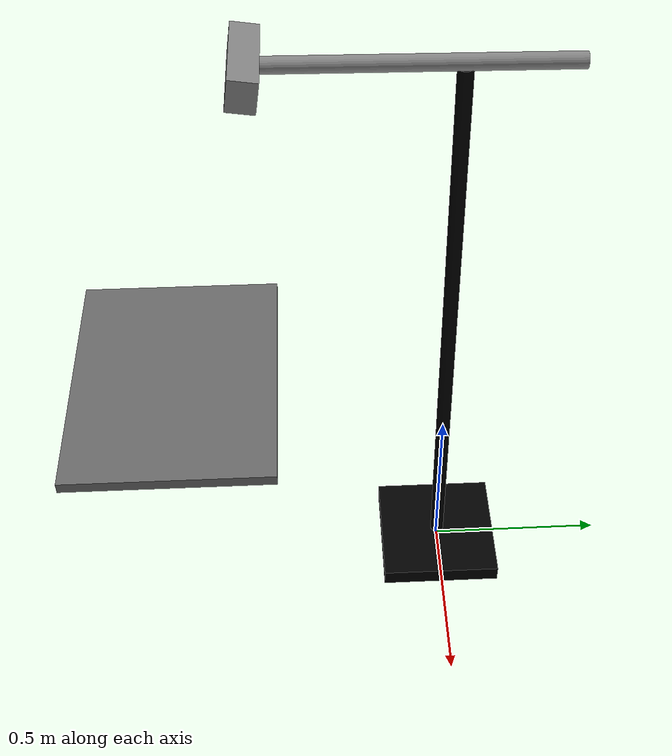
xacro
<?xml version="1.0"?>
<robot name="pole2"
       xmlns:xi="http://www.w3.org/2001/XInclude"
       xmlns:gazebo="http://playerstage.sourceforge.net/gazebo/xmlschema/#gz"
       xmlns:model="http://playerstage.sourceforge.net/gazebo/xmlschema/#model"
       xmlns:sensor="http://playerstage.sourceforge.net/gazebo/xmlschema/#sensor"
       xmlns:body="http://playerstage.sourceforge.net/gazebo/xmlschema/#body"
       xmlns:geom="http://playerstage.sourceforge.net/gazebo/xmlschema/#geom"
       xmlns:joint="http://playerstage.sourceforge.net/gazebo/xmlschema/#joint"
       xmlns:interface="http://playerstage.sourceforge.net/gazebo/xmlschema/#interface"
       xmlns:rendering="http://playerstage.sourceforge.net/gazebo/xmlschema/#rendering"
       xmlns:renderable="http://playerstage.sourceforge.net/gazebo/xmlschema/#renderable"
       xmlns:controller="http://playerstage.sourceforge.net/gazebo/xmlschema/#controller"
       xmlns:physics="http://playerstage.sourceforge.net/gazebo/xmlschema/#physics">

  <property name="pole2_height" value="1.7" />
  <property name="pole2_width"  value="0.35" />
  <property name="pole2_depth"  value="0.35" />
  <property name="pole2_radius" value="0.02" />
  <property name="pole2_x"      value="0.0" />
  <property name="pole2_y"      value="0.0" />
  <property name="pole2_z"      value="0.0" />

  <property name="pole2_base_color" value="0 0 0 1" />
  <property name="pole2_color" value="0 0 0 1" />
  <property name="table_color" value="100 100 100 1" />

  <property name="pole2_base_thickness" value="0.05"/>

  <property name="M_PI" value="3.1415926535897931" />

  <link name="pole2_base_link">
    <inertial>
      <mass value="1.0" />
      <origin xyz="${pole2_x} ${pole2_y} ${pole2_z}" />
      <inertia ixx="1" ixy="0"  ixz="0"
               iyy="1" iyz="0"
               izz="1" />
    </inertial>
    <visual>
      <origin xyz="${pole2_x} ${pole2_y} ${pole2_z}" />
      <geometry>
        <box size="${pole2_width} ${pole2_depth} ${pole2_base_thickness}" />
      </geometry>
      <material name="pole2_base_blue">
        <color rgba="${pole2_base_color}"/>
      </material>
    </visual>
    <collision>
      <origin xyz="${pole2_x} ${pole2_y} ${pole2_z}" />
      <geometry>
        <box size="${pole2_width} ${pole2_depth} ${pole2_base_thickness}" />
      </geometry>
    </collision>
  </link>
  <gazebo reference="pole2_base_link">
    <material>Gazebo/LightWood</material>
    <mu1>50.0</mu1>
    <mu2>50.0</mu2>
    <kp>1000000.0</kp>
    <kd>1.0</kd>
  </gazebo>

  <joint name="pole2_joint" type="fixed" >
    <parent link="pole2_base_link" />
    <origin xyz="0 0 ${pole2_base_thickness}" rpy="0 0 0" />
    <child link="pole2_link" />
  </joint>
  <link name="pole2_link">
    <inertial>
      <mass value="1.0" />
      <origin xyz="0 0 ${-pole2_height/2}" />
      <inertia ixx="0.1" ixy="0"  ixz="0"
               iyy="0.1" iyz="0"
               izz="0.01" />
    </inertial>
    <visual>
      <origin xyz="0.0 0.0 ${+pole2_height/2-pole2_base_thickness}" rpy="0 0 0" />
      <geometry>
        <cylinder radius="${pole2_radius}" length="${pole2_height-pole2_base_thickness}" />
      </geometry>
      <material name="pole2_blue">
        <color rgba="${pole2_color}"/>
      </material>
    </visual>

    <collision>
      <origin xyz="0.0 0.0 ${+pole2_height/2-pole2_base_thickness}" rpy="0.0 0.0 0.0" />
      <geometry>
        <cylinder radius="${pole2_radius}" length="${pole2_height-pole2_base_thickness}" />
      </geometry>
    </collision>
  </link>
  <gazebo reference="pole2_link">
    <material>Gazebo/Gray</material>
    <mu1>1000.0</mu1>
    <mu2>1000.0</mu2>
    <kp>10000000.0</kp>
    <kd>1.0</kd>
    <selfCollide>true</selfCollide>
  </gazebo>

  <joint name="pole2_top" type="fixed" >
    <parent link="pole2_link" />
    <origin xyz="0 0 0" rpy="0 0 0" />
    <child link="pole2_top_link" />
  </joint>
  <link name="pole2_top_link">
    <inertial>
      <mass value="1.0" />
      <origin xyz="0 0 0" />
      <inertia ixx="0.1" ixy="0"  ixz="0"
               iyy="0.1" iyz="0"
               izz="0.01" />
    </inertial>
    <visual>
      <origin xyz="0.0 -0.1 ${pole2_height-pole2_base_thickness - 0.01}" rpy="1.56 0 0" />
      <geometry>
        <cylinder radius="${pole2_radius }" length="0.75" />
      </geometry>
      <material name="pole2_blue">
        <color rgba="128 128 128 1"/>
      </material>
    </visual>

    <collision>
      <origin xyz="0.0 -0.1 ${pole2_height-pole2_base_thickness - 0.01}" rpy="1.56 0 0" />
      <geometry>
        <cylinder radius="${pole2_radius }" length="0.75" />
      </geometry>
    </collision>
  </link>
  <gazebo reference="pole2_top_link">
    <material>Gazebo/Gray</material>
    <mu1>1000.0</mu1>
    <mu2>1000.0</mu2>
    <kp>10000000.0</kp>
    <kd>1.0</kd>
    <selfCollide>true</selfCollide>
  </gazebo>

  <joint name="kinect_pole" type="fixed" >
    <parent link="pole2_top_link" />
    <origin xyz="0 0 0" rpy="0 0 0" />
    <child link="kinect_pole_link" />
  </joint>
  <link name="kinect_pole_link">
    <inertial>
      <mass value="1.0" />
      <origin xyz="0 0 0" />
      <inertia ixx="0.1" ixy="0"  ixz="0"
               iyy="0.1" iyz="0"
               izz="0.01" />
    </inertial>
    <visual>
      <origin xyz="0.0 -0.5 ${pole2_height-pole2_base_thickness - 0.01}" rpy="-0.15 0 0" />
      <geometry>
        <box size="0.25 0.07 0.08" />
      </geometry>
      <material name="pole2_blue">
        <color rgba="128 128 128 1"/>
      </material>
    </visual>

    <collision>
      <origin xyz="0.0 -0.5 ${pole2_height-pole2_base_thickness - 0.01}" rpy="-0.15 0 0" />
      <geometry>
        <box size="0.25 0.07 0.08" />
      </geometry>
    </collision>
  </link>
  <gazebo reference="kinect_pole_link">
    <material>Gazebo/Gray</material>
    <mu1>1000.0</mu1>
    <mu2>1000.0</mu2>
    <kp>10000000.0</kp>
    <kd>1.0</kd>
    <selfCollide>true</selfCollide>
  </gazebo>

<joint name="op_table" type="fixed" >
    <parent link="pole2_base_link" />
    <origin xyz="0 0 0" rpy="0 0 0" />
    <child link="op_table_link" />
  </joint>
  <link name="op_table_link">
    <inertial>
      <mass value="1.0" />
      <origin xyz="0 0 0" />
      <inertia ixx="0.1" ixy="0"  ixz="0"
               iyy="0.1" iyz="0"
               izz="0.01" />
    </inertial>
    <visual>
      <origin xyz="0.02 -0.75 0.74" rpy="0 0 0" />
      <geometry>
        <box size="0.75 0.56 0.03" />
      </geometry>
      <material name="table_color">
        <color rgba="100 100 100 1"/>
      </material>
    </visual>

    <collision>
      <origin xyz="0.0 -0.75 0.74" rpy="0 0 0" />
      <geometry>
        <box size="0.75 0.56 0.02" />
      </geometry>
    </collision>
  </link>
  <gazebo reference="op_table_link">
    <material>Gazebo/Gray</material>
    <mu1>1000.0</mu1>
    <mu2>1000.0</mu2>
    <kp>10000000.0</kp>
    <kd>1.0</kd>
    <selfCollide>true</selfCollide>
  </gazebo>

</robot>
